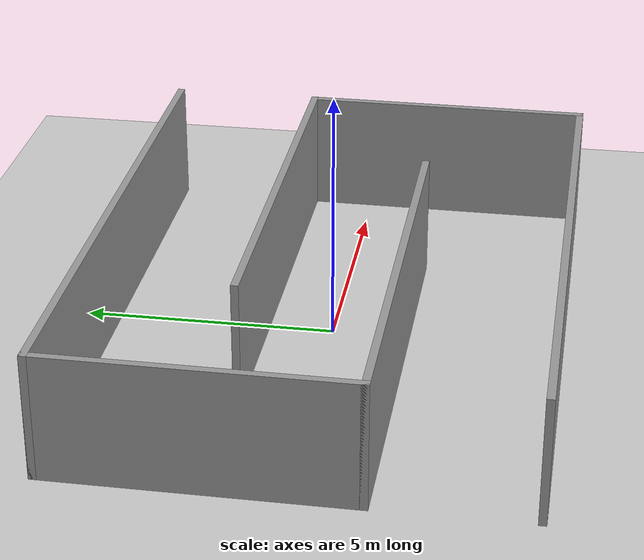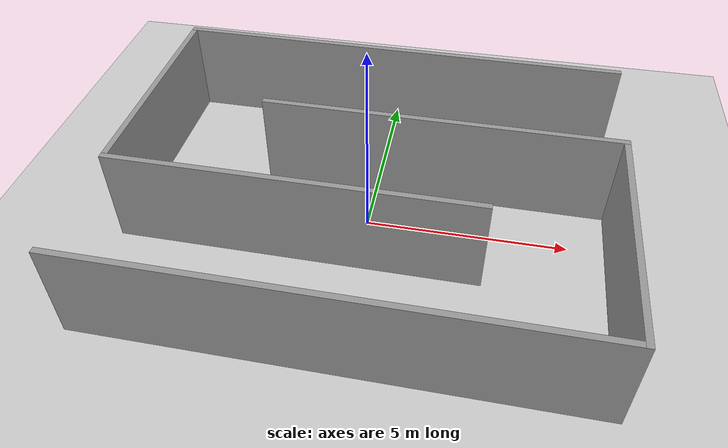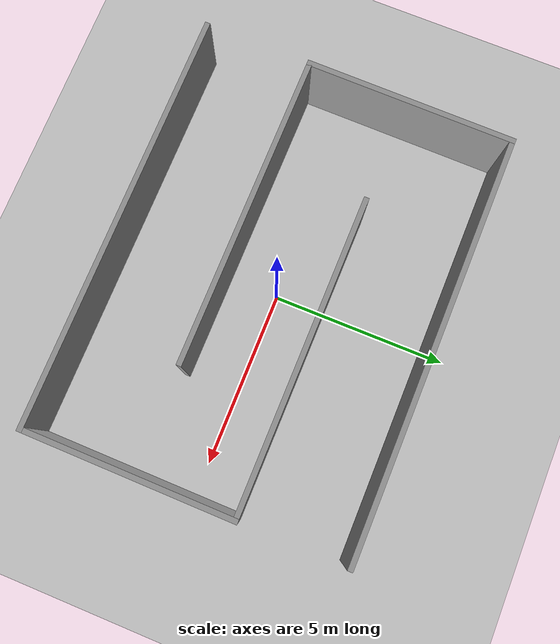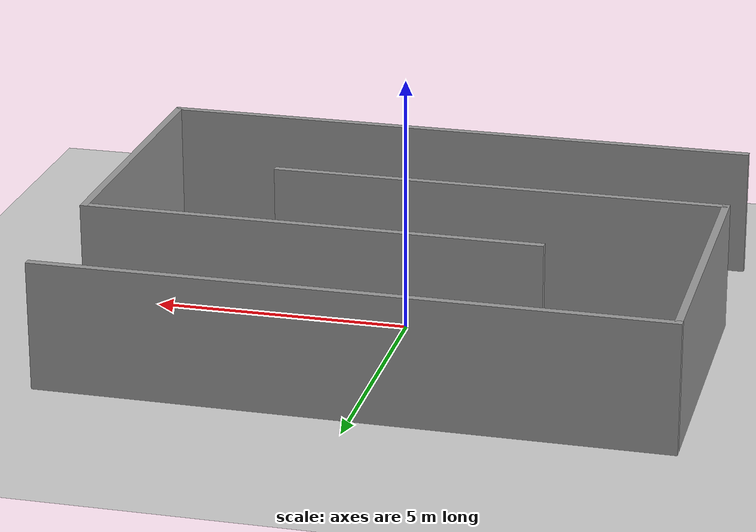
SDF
<sdf version="1.7">
 <world name="default">
  <light name="sun" type="directional">
   <pose>0 0 10 0 -0 0</pose>
   <diffuse>0.8 0.8 0.8 1</diffuse>
   <specular>0.2 0.2 0.2 1</specular>
   <attenuation>
    <range>1000</range>
    <constant>0.9</constant>
    <linear>0.01</linear>
    <quadratic>0.001</quadratic>
   </attenuation>
   <direction>-0.5 0.1 -0.9</direction>
   <spot><inner_angle>0</inner_angle><outer_angle>0</outer_angle><falloff>0</falloff></spot>
  </light>
  <model name="ground_plane">
   <static>1</static>
   <link name="link">
    <collision name="collision">
     <geometry><plane><normal>0 0 1</normal><size>100 100</size></plane></geometry>
     <surface>
      <contact><collide_bitmask>65535</collide_bitmask></contact>
      <friction><ode><mu>100</mu><mu2>50</mu2></ode></friction>
     </surface>
    </collision>
    <visual name="visual">
     <cast_shadows>0</cast_shadows>
     <geometry><plane><normal>0 0 1</normal><size>100 100</size></plane></geometry>
     <material>
      <script><uri>file://media/materials/scripts/gazebo.material</uri><name>Gazebo/Grey</name></script>
     </material>
    </visual>
   </link>
  </model>
  <physics name="default_physics" default="0" type="ode">
   <ode>
    <solver>
     <type>quick</type>
     <iters>10</iters>
     <sor>1.3</sor>
     <use_dynamic_moi_rescaling>0</use_dynamic_moi_rescaling>
    </solver>
    <constraints>
     <cfm>0</cfm>
     <erp>0.2</erp>
     <contact_max_correcting_vel>100</contact_max_correcting_vel>
     <contact_surface_layer>0.001</contact_surface_layer>
    </constraints>
   </ode>
   <max_step_size>0.004</max_step_size>
   <real_time_factor>1</real_time_factor>
   <real_time_update_rate>250</real_time_update_rate>
  </physics>
  <gravity>0 0 -9.8066</gravity>
  <magnetic_field>6e-06 2.3e-05 -4.2e-05</magnetic_field>
  <atmosphere type="adiabatic"/>
  <scene><ambient>0.4 0.4 0.4 1</ambient><background>0.7 0.7 0.7 1</background><shadows>1</shadows></scene>
  <spherical_coordinates>
   <surface_model>EARTH_WGS84</surface_model>
   <latitude_deg>0</latitude_deg>
   <longitude_deg>0</longitude_deg>
   <elevation>0</elevation>
   <heading_deg>0</heading_deg>
  </spherical_coordinates>
  <model name="maze">
   <pose>0.02697 -0.054778 0 0 0 -1.57769</pose>
   <link name="Wall_2">
    <collision name="Wall_2_Collision">
     <geometry><box><size>12 0.15 2.5</size></box></geometry>
     <pose>0 0 1.25 0 -0 0</pose>
    </collision>
    <visual name="Wall_2_Visual">
     <pose>0 0 1.25 0 -0 0</pose>
     <geometry><box><size>12 0.15 2.5</size></box></geometry>
     <material>
      <script><uri>file://media/materials/scripts/gazebo.material</uri><name>Gazebo/Grey</name></script>
      <ambient>1 1 1 1</ambient>
     </material>
     <meta><layer>0</layer></meta>
    </visual>
    <pose>-4.44243 -0.017881 0 0 -0 -1.5708</pose>
   </link>
   <link name="Wall_3">
    <collision name="Wall_3_Collision">
     <geometry><box><size>6 0.15 2.5</size></box></geometry>
     <pose>0 0 1.25 0 -0 0</pose>
    </collision>
    <visual name="Wall_3_Visual">
     <pose>0 0 1.25 0 -0 0</pose>
     <geometry><box><size>6 0.15 2.5</size></box></geometry>
     <material>
      <script><uri>file://media/materials/scripts/gazebo.material</uri><name>Gazebo/Grey</name></script>
      <ambient>1 1 1 1</ambient>
     </material>
     <meta><layer>0</layer></meta>
    </visual>
    <pose>-1.51743 -5.94288 0 0 -0 0</pose>
   </link>
   <link name="Wall_4">
    <collision name="Wall_4_Collision">
     <geometry><box><size>9 0.15 2.5</size></box></geometry>
     <pose>0 0 1.25 0 -0 0</pose>
    </collision>
    <visual name="Wall_4_Visual">
     <pose>0 0 1.25 0 -0 0</pose>
     <geometry><box><size>9 0.15 2.5</size></box></geometry>
     <material>
      <script><uri>file://media/materials/scripts/gazebo.material</uri><name>Gazebo/Grey</name></script>
      <ambient>1 1 1 1</ambient>
     </material>
     <meta><layer>0</layer></meta>
    </visual>
    <pose>1.40757 -1.51788 0 0 -0 1.5708</pose>
   </link>
   <link name="Wall_6">
    <collision name="Wall_6_Collision">
     <geometry><box><size>9 0.15 2.5</size></box></geometry>
     <pose>0 0 1.25 0 -0 0</pose>
    </collision>
    <visual name="Wall_6_Visual">
     <pose>0 0 1.25 0 -0 0</pose>
     <geometry><box><size>9 0.15 2.5</size></box></geometry>
     <material>
      <script><uri>file://media/materials/scripts/gazebo.material</uri><name>Gazebo/Grey</name></script>
      <ambient>1 1 1 1</ambient>
     </material>
     <meta><layer>0</layer></meta>
    </visual>
    <pose>-1.40757 1.51788 0 0 -0 1.5708</pose>
   </link>
   <link name="Wall_7">
    <collision name="Wall_7_Collision">
     <geometry><box><size>6 0.15 2.5</size></box></geometry>
     <pose>0 0 1.25 0 -0 0</pose>
    </collision>
    <visual name="Wall_7_Visual">
     <pose>0 0 1.25 0 -0 0</pose>
     <geometry><box><size>6 0.15 2.5</size></box></geometry>
     <material>
      <script><uri>file://media/materials/scripts/gazebo.material</uri><name>Gazebo/Grey</name></script>
      <ambient>1 1 1 1</ambient>
     </material>
     <meta><layer>0</layer></meta>
    </visual>
    <pose>1.51743 5.94288 0 0 -0 0</pose>
   </link>
   <link name="Wall_8">
    <collision name="Wall_8_Collision">
     <geometry><box><size>12 0.15 2.5</size></box></geometry>
     <pose>0 0 1.25 0 -0 0</pose>
    </collision>
    <visual name="Wall_8_Visual">
     <pose>0 0 1.25 0 -0 0</pose>
     <geometry><box><size>12 0.15 2.5</size></box></geometry>
     <material>
      <script><uri>file://media/materials/scripts/gazebo.material</uri><name>Gazebo/Grey</name></script>
      <ambient>1 1 1 1</ambient>
     </material>
     <meta><layer>0</layer></meta>
    </visual>
    <pose>4.44243 0.017881 0 0 -0 -1.5708</pose>
   </link>
   <static>1</static>
  </model>
 </world>
</sdf>
